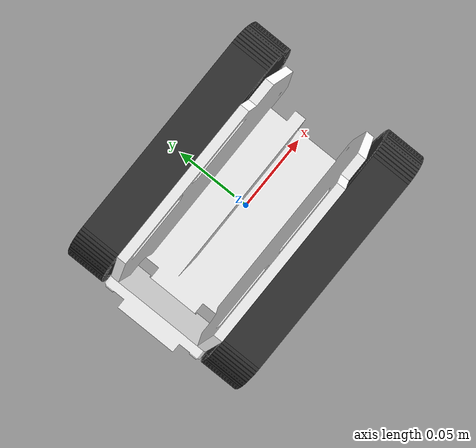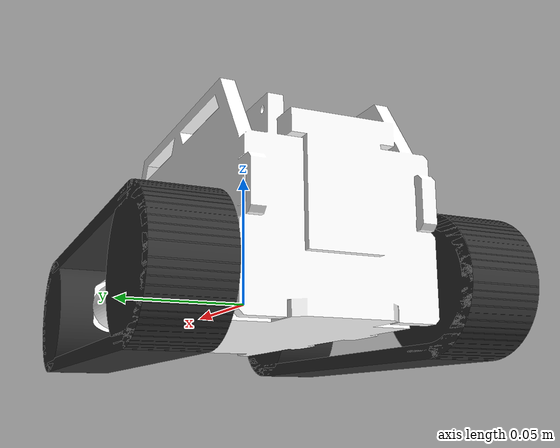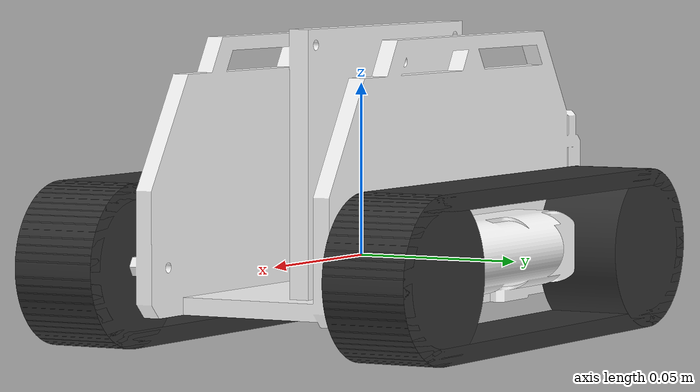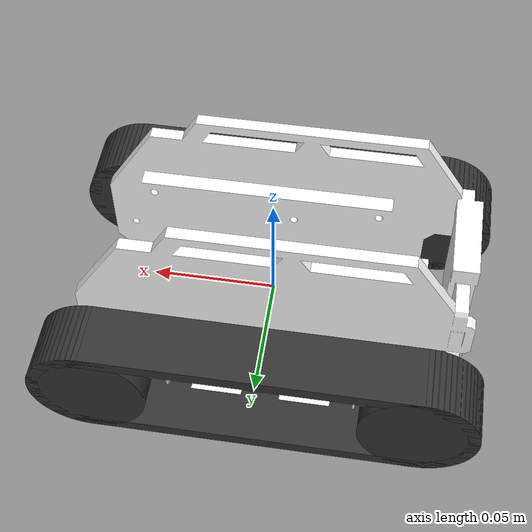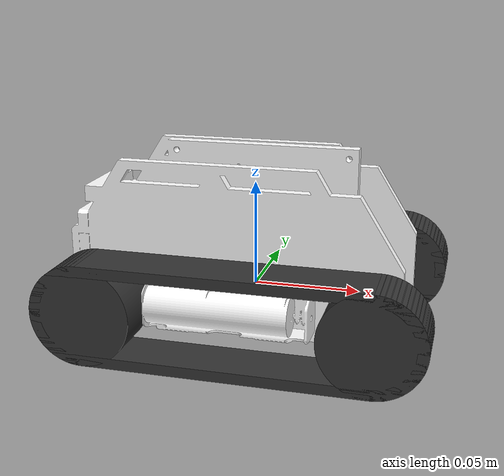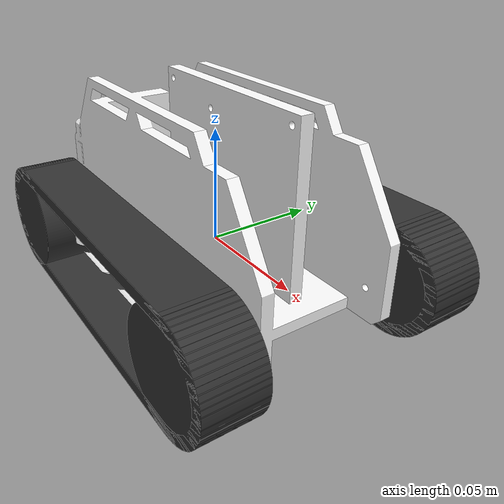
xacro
<?xml version="1.0" ?>
<robot name="colmena2" xmlns:xacro="http://www.ros.org/wiki/xacro">

  <xacro:include filename="$(find colmena2_description)/urdf/materials.xacro" />

  <link name="base_link"/>

  <link name="chassis">
    <inertial>
      <mass value="0.298408"/>
      <origin xyz="0 0 0" rpy="0.0 0.0 0.0"/>
      <inertia
        ixx="0.0003667"
        ixy="-0.0000122"
        ixz="0.0000112"
        iyy="0.0005734"
        iyz="-0.0000046"
        izz="0.00006682"
      />
    </inertial>
    <visual>
      <origin xyz="0 0 0" rpy="0 0 0"/>
      <geometry>
        <mesh filename="file://$(find colmena2_description)/meshes/chassis.stl" scale="0.001 0.001 0.001"/>
      </geometry>
      <material name="white"/>
    </visual>
    <collision>
      <origin xyz="0 0 0" rpy="0 0 0"/>
      <geometry>
        <mesh filename="file://$(find colmena2_description)/meshes/chassis.stl" scale="0.001 0.001 0.001"/>
      </geometry>
    </collision>
  </link>

  <link name="left_sprocket">
    <inertial>
      <mass value="0.051528"/>
      <origin xyz="0 0 0" rpy="0.0 0.0 0.0"/>
      <inertia
        ixx="0.0000098"
        ixy="0.0"
        ixz="0.0"
        iyy="0.0000142"
        iyz="0.0"
        izz="0.0000098"
      />
    </inertial>
    <visual>
      <origin xyz="0 0 0" rpy="0 0 0"/>
      <geometry>
        <mesh filename="file://$(find colmena2_description)/meshes/wheel.stl" scale="0.001 0.001 0.001"/>
      </geometry>
      <material name="black"/>
    </visual>
    <collision>
      <origin xyz="0 0 0" rpy="0 0 0"/>
      <geometry>
        <mesh filename="file://$(find colmena2_description)/meshes/wheel.stl" scale="0.001 0.001 0.001"/>
      </geometry>
    </collision>
  </link>

  <link name="right_sprocket">
    <inertial>
      <mass value="0.051528"/>
      <origin xyz="0 0 0" rpy="0.0 0.0 0.0"/>
      <inertia
        ixx="0.0000098"
        ixy="0.0"
        ixz="0.0"
        iyy="0.0000142"
        iyz="0.0"
        izz="0.0000098"
      />
    </inertial>
    <visual>
      <origin xyz="0 0 0" rpy="0 0 0"/>
      <geometry>
        <mesh filename="file://$(find colmena2_description)/meshes/wheel.stl" scale="0.001 0.001 0.001"/>
      </geometry>
      <material name="black"/>
    </visual>
    <collision>
      <origin xyz="0 0 0" rpy="0 0 0"/>
      <geometry>
        <mesh filename="file://$(find colmena2_description)/meshes/wheel.stl" scale="0.001 0.001 0.001"/>
      </geometry>
    </collision>
  </link>

  <link name="left_wheel">
    <inertial>
      <mass value="0.051528"/>
      <origin xyz="0 0 0" rpy="0.0 0.0 0.0"/>
      <inertia
        ixx="0.0000098"
        ixy="0.0"
        ixz="0.0"
        iyy="0.0000142"
        iyz="0.0"
        izz="0.0000098"
      />
    </inertial>
    <visual>
      <origin xyz="0 0 0" rpy="0 0 0"/>
      <geometry>
        <mesh filename="file://$(find colmena2_description)/meshes/wheel.stl" scale="0.001 0.001 0.001"/>
      </geometry>
      <material name="black"/>
    </visual>
    <collision>
      <origin xyz="0 0 0" rpy="0 0 0"/>
      <geometry>
        <mesh filename="file://$(find colmena2_description)/meshes/wheel.stl" scale="0.001 0.001 0.001"/>
      </geometry>
    </collision>
  </link>

  <link name="right_wheel">
    <inertial>
      <mass value="0.051528"/>
      <origin xyz="0 0 0" rpy="0.0 0.0 0.0"/>
      <inertia
        ixx="0.0000098"
        ixy="0.0"
        ixz="0.0"
        iyy="0.0000142"
        iyz="0.0"
        izz="0.0000098"
      />
    </inertial>
    <visual>
      <origin xyz="0 0 0" rpy="0 0 0"/>
      <geometry>
        <mesh filename="file://$(find colmena2_description)/meshes/wheel.stl" scale="0.001 0.001 0.001"/>
      </geometry>
      <material name="black"/>
    </visual>
    <collision>
      <origin xyz="0 0 0" rpy="0 0 0"/>
      <geometry>
        <mesh filename="file://$(find colmena2_description)/meshes/wheel.stl" scale="0.001 0.001 0.001"/>
      </geometry>
    </collision>
  </link>

  <link name="left_track">
    <inertial>
      <mass value="0.049475"/>
      <origin xyz="0 0 0" rpy="0.0 0.0 0.0"/>
      <inertia
        ixx="0.0000208"
        ixy="0.0"
        ixz="0.0"
        iyy="0.0001660"
        iyz="0.0"
        izz="0.0001504"
      />
    </inertial>
    <visual>
      <origin xyz="0 0 0" rpy="0 0 0"/>
      <geometry>
        <mesh filename="file://$(find colmena2_description)/meshes/track.stl" scale="0.001 0.001 0.001"/>
      </geometry>
      <material name="black"/>
    </visual>
  </link>

  <link name="right_track">
    <inertial>
      <mass value="0.049475"/>
      <origin xyz="0 0 0" rpy="0.0 0.0 0.0"/>
      <inertia
        ixx="0.0000208"
        ixy="0.0"
        ixz="0.0"
        iyy="0.0001660"
        iyz="0.0"
        izz="0.0001504"
      />
    </inertial>
    <visual>
      <origin xyz="0 0 0" rpy="0 0 0"/>
      <geometry>
        <mesh filename="file://$(find colmena2_description)/meshes/track.stl" scale="0.001 0.001 0.001"/>
      </geometry>
      <material name="black"/>
    </visual>
  </link>

  <joint name="ch_to_bl_joint" type="fixed">
    <parent link="base_link"/>
    <child link="chassis"/>
    <origin xyz="-0.007614 0.000962 0.01313"/>
  </joint>

  <joint name="ls_to_ch_joint" type="continuous">
    <parent link="chassis"/>
    <child link="left_sprocket"/>
    <origin xyz="-0.056886 0.048538 -0.01313"/>
    <axis xyz="0 1 0"/>
  </joint>

  <joint name="rs_to_ch_joint" type="continuous">
    <parent link="chassis"/>
    <child link="right_sprocket"/>
    <origin xyz="-0.056886 -0.050462 -0.01313"/>
    <axis xyz="0 1 0"/>
  </joint>

  <joint name="lw_to_ch_joint" type="continuous">
    <parent link="chassis"/>
    <child link="left_wheel"/>
    <origin xyz="0.072114 0.048538 -0.01313"/>
    <axis xyz="0 1 0"/>
    <mimic joint="ls_to_ch_joint" multiplier="1" offset="0"/>
  </joint>

  <joint name="rw_to_ch_joint" type="continuous">
    <parent link="chassis"/>
    <child link="right_wheel"/>
    <origin xyz="0.072114 -0.050462 -0.01313"/>
    <axis xyz="0 1 0"/>
    <mimic joint="rs_to_ch_joint" multiplier="1" offset="0"/>
  </joint>

  <joint name="lt_to_ch_joint" type="fixed">
    <parent link="chassis"/>
    <child link="left_track"/>
    <origin xyz="0.007614 0.048538 -0.01313"/>
  </joint>

  <joint name="rt_to_ch_joint" type="fixed">
    <parent link="chassis"/>
    <child link="right_track"/>
    <origin xyz="0.007614 -0.050462 -0.01313"/>
  </joint>

</robot>

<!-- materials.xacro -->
<robot name="colmena2" xmlns:xacro="http://www.ros.org/wiki/xacro" >

  <material name="black">
    <color rgba="0.200 0.200 0.200 1.000"/> <!-- Negro -->
  </material>

  <material name="white">
    <color rgba="1.000 1.000 1.000 1.000"/> <!-- Blanco -->
  </material>

</robot>
